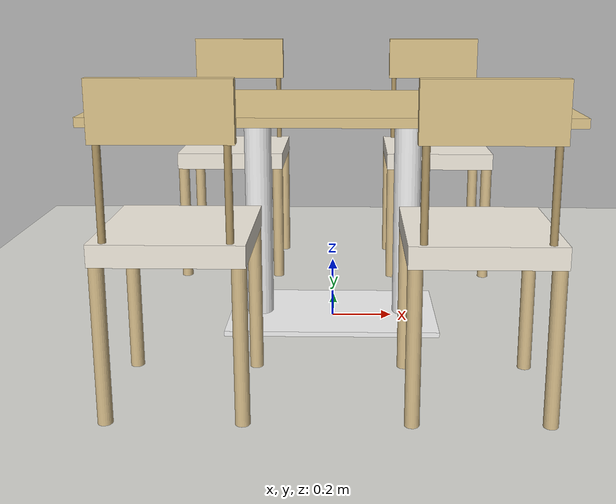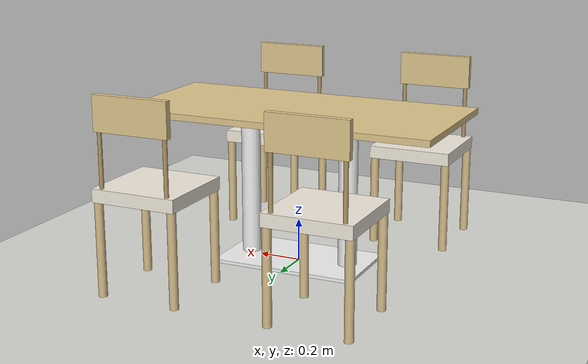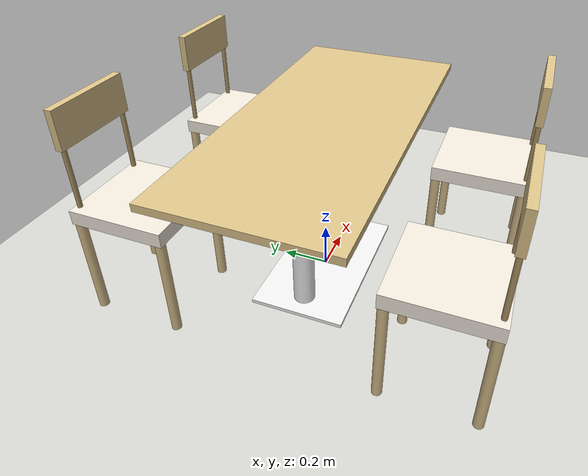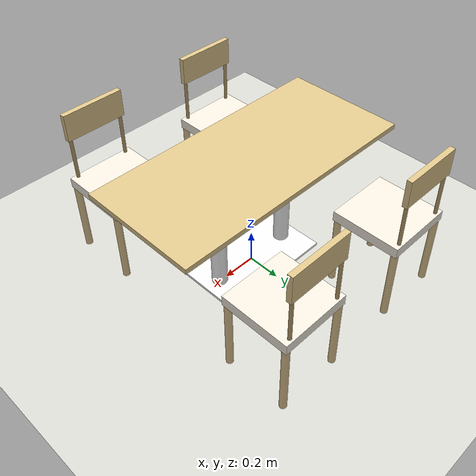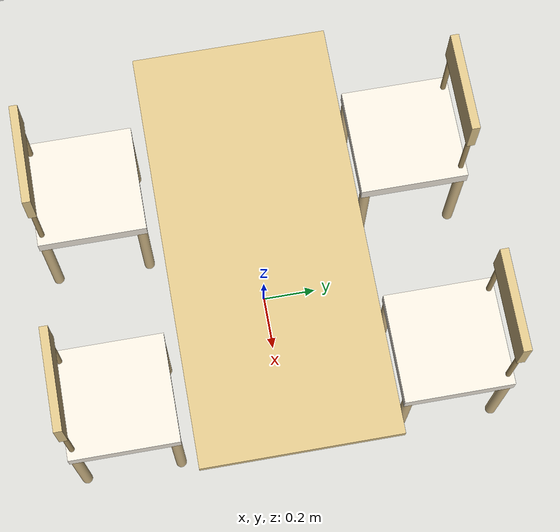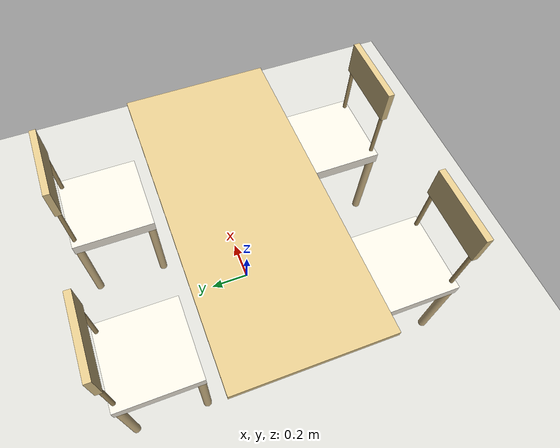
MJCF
<mujoco model="cafe_table_set">
  <compiler angle="degree" coordinate="local" inertiafromgeom="true" autolimits="true"/>
  <option timestep="0.002" gravity="0 0 -9.81"/>

  <!-- Visual Quality Optimization -->
  <visual>
    <global offwidth="3840" offheight="2160" fovy="45"/>
    <quality shadowsize="4096" offsamples="8"/>
    <headlight ambient="0.3 0.3 0.3" diffuse="0.4 0.4 0.4" specular="0.1 0.1 0.1"/>
    <map znear="0.01" zfar="100" shadowscale="0.5"/>
  </visual>

  <statistic extent="4" center="0 0 1"/>

  <asset>
    <!-- Light wood texture for table top and chair backs -->
    <texture name="tex_wood_light" type="2d" builtin="flat" rgb1="0.88 0.78 0.55" width="1024" height="1024"/>
    <material name="mat_wood_light" texture="tex_wood_light" reflectance="0.3" shininess="0.2" specular="0.2"/>

    <!-- White metal for table base -->
    <texture name="tex_white" type="2d" builtin="flat" rgb1="0.96 0.96 0.96" width="1024" height="1024"/>
    <material name="mat_white_metal" texture="tex_white" reflectance="0.5" shininess="0.6" specular="0.5"/>

    <!-- Cream cushion for chairs -->
    <texture name="tex_fabric_cream" type="2d" builtin="flat" rgb1="0.96 0.93 0.88" width="1024" height="1024"/>
    <material name="mat_cushion_cream" texture="tex_fabric_cream" reflectance="0.1" shininess="0.1"/>

    <!-- Dark Metal/Brass for chair frame details -->
    <material name="mat_metal_gold" rgba="0.7 0.6 0.4 1" reflectance="0.7" shininess="0.9" specular="0.7"/>
    <material name="mat_chair_leg" rgba="0.85 0.75 0.55 1" reflectance="0.3" shininess="0.2"/>
  </asset>

  <default>
    <default class="chair_leg">
        <geom type="cylinder" size="0.02 0.22" material="mat_chair_leg"/>
    </default>
  </default>

  <worldbody>
    <!-- Professional Lighting Setup -->
    <!-- Key Light -->
    <light name="key_light" pos="-2 -3 4" dir="0.5 0.6 -0.8" diffuse="0.9 0.85 0.8" specular="0.4 0.4 0.4" castshadow="true" cutoff="60" attenuation="0.5 0 0.1"/>
    <!-- Fill Light -->
    <light name="fill_light" pos="3 2 3" dir="-0.6 -0.4 -0.6" diffuse="0.3 0.35 0.4" specular="0.1 0.1 0.1" castshadow="false" attenuation="0.5 0 0.1"/>
    <!-- Back Light -->
    <light name="back_light" pos="0 4 3" dir="0 -0.8 -0.6" diffuse="0.4 0.4 0.35" specular="0.3 0.3 0.3" castshadow="false" attenuation="0.5 0 0.1"/>

    <!-- Floor -->
    <geom name="floor" type="plane" pos="0 0 0" size="4 3 0.1" rgba="0.85 0.85 0.83 1" material="mat_wood_light"/>

    <!-- TABLE: Elongated to 1.5m length -->
    <body name="cafe_table" pos="0 0 0">
      <!-- Base Plate: Widened to support longer top (0.7m x 0.4m base footprint) -->
      <geom name="base_plate" type="box" pos="0 0 0.008" size="0.35 0.20 0.008" material="mat_white_metal"/>

      <!-- Legs: Spaced further apart for stability -->
      <geom name="leg_left" type="cylinder" pos="-0.25 0 0.36" size="0.045 0.35" material="mat_white_metal"/>
      <geom name="leg_right" type="cylinder" pos="0.25 0 0.36" size="0.045 0.35" material="mat_white_metal"/>

      <!-- Table Top: 1.5m x 0.7m -->
      <geom name="table_top" type="box" pos="0 0 0.725" size="0.75 0.35 0.015" material="mat_wood_light"/>
    </body>

    <!-- CHAIRS: 4 Chairs matching the style -->
    <!-- Style: Wood legs, cream cushion, curved wood backrest -->

    <!-- Chair 1: Front Right -->
    <body name="chair_1" pos="0.4 -0.6 0" euler="0 0 180">
        <!-- Legs (Leg height ~45cm) -->
        <geom name="c1_leg_fl" class="chair_leg" pos="-0.18 -0.18 0.22"/>
        <geom name="c1_leg_fr" class="chair_leg" pos="0.18 -0.18 0.22"/>
        <geom name="c1_leg_bl" class="chair_leg" pos="-0.18 0.18 0.22"/>
        <geom name="c1_leg_br" class="chair_leg" pos="0.18 0.18 0.22"/>

        <!-- Seat Cushion (Cream) -->
        <geom name="c1_seat" type="box" pos="0 0 0.46" size="0.20 0.20 0.03" material="mat_cushion_cream"/>

        <!-- Backrest Frame (Metal supports) -->
        <geom name="c1_frame_l" type="cylinder" pos="-0.16 0.18 0.65" size="0.01 0.20" material="mat_metal_gold"/>
        <geom name="c1_frame_r" type="cylinder" pos="0.16 0.18 0.65" size="0.01 0.20" material="mat_metal_gold"/>

        <!-- Backrest Wood -->
        <geom name="c1_back" type="box" pos="0 0.18 0.82" size="0.18 0.015 0.08" material="mat_wood_light"/>
    </body>

    <!-- Chair 2: Front Left -->
    <body name="chair_2" pos="-0.4 -0.6 0" euler="0 0 180">
        <geom name="c2_leg_fl" class="chair_leg" pos="-0.18 -0.18 0.22"/>
        <geom name="c2_leg_fr" class="chair_leg" pos="0.18 -0.18 0.22"/>
        <geom name="c2_leg_bl" class="chair_leg" pos="-0.18 0.18 0.22"/>
        <geom name="c2_leg_br" class="chair_leg" pos="0.18 0.18 0.22"/>
        <geom name="c2_seat" type="box" pos="0 0 0.46" size="0.20 0.20 0.03" material="mat_cushion_cream"/>
        <geom name="c2_frame_l" type="cylinder" pos="-0.16 0.18 0.65" size="0.01 0.20" material="mat_metal_gold"/>
        <geom name="c2_frame_r" type="cylinder" pos="0.16 0.18 0.65" size="0.01 0.20" material="mat_metal_gold"/>
        <geom name="c2_back" type="box" pos="0 0.18 0.82" size="0.18 0.015 0.08" material="mat_wood_light"/>
    </body>

    <!-- Chair 3: Back Right (Rotated 180) -->
    <body name="chair_3" pos="0.4 0.6 0" euler="0 0 0">
        <geom name="c3_leg_fl" class="chair_leg" pos="-0.18 -0.18 0.22"/>
        <geom name="c3_leg_fr" class="chair_leg" pos="0.18 -0.18 0.22"/>
        <geom name="c3_leg_bl" class="chair_leg" pos="-0.18 0.18 0.22"/>
        <geom name="c3_leg_br" class="chair_leg" pos="0.18 0.18 0.22"/>
        <geom name="c3_seat" type="box" pos="0 0 0.46" size="0.20 0.20 0.03" material="mat_cushion_cream"/>
        <geom name="c3_frame_l" type="cylinder" pos="-0.16 0.18 0.65" size="0.01 0.20" material="mat_metal_gold"/>
        <geom name="c3_frame_r" type="cylinder" pos="0.16 0.18 0.65" size="0.01 0.20" material="mat_metal_gold"/>
        <geom name="c3_back" type="box" pos="0 0.18 0.82" size="0.18 0.015 0.08" material="mat_wood_light"/>
    </body>

    <!-- Chair 4: Back Left (Rotated 180) -->
    <body name="chair_4" pos="-0.4 0.6 0" euler="0 0 0">
        <geom name="c4_leg_fl" class="chair_leg" pos="-0.18 -0.18 0.22"/>
        <geom name="c4_leg_fr" class="chair_leg" pos="0.18 -0.18 0.22"/>
        <geom name="c4_leg_bl" class="chair_leg" pos="-0.18 0.18 0.22"/>
        <geom name="c4_leg_br" class="chair_leg" pos="0.18 0.18 0.22"/>
        <geom name="c4_seat" type="box" pos="0 0 0.46" size="0.20 0.20 0.03" material="mat_cushion_cream"/>
        <geom name="c4_frame_l" type="cylinder" pos="-0.16 0.18 0.65" size="0.01 0.20" material="mat_metal_gold"/>
        <geom name="c4_frame_r" type="cylinder" pos="0.16 0.18 0.65" size="0.01 0.20" material="mat_metal_gold"/>
        <geom name="c4_back" type="box" pos="0 0.18 0.82" size="0.18 0.015 0.08" material="mat_wood_light"/>
    </body>

  </worldbody>
</mujoco>
